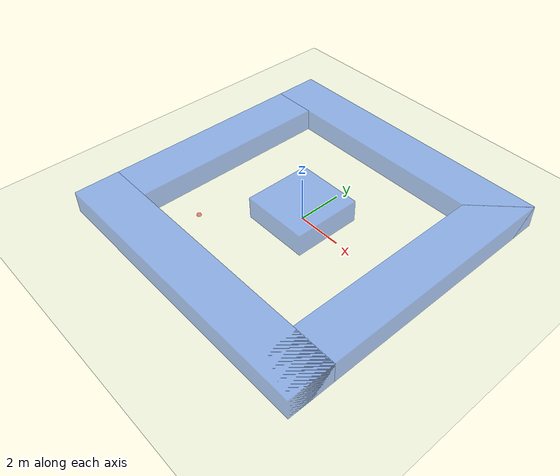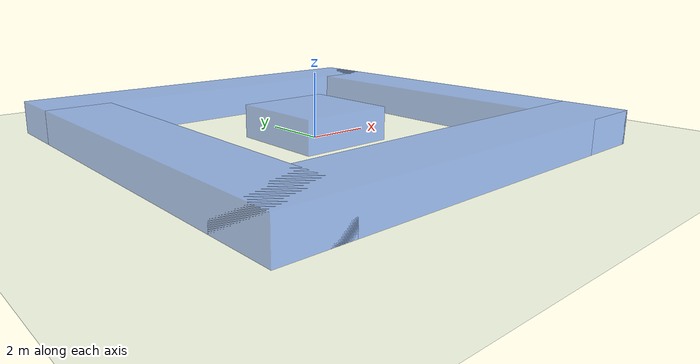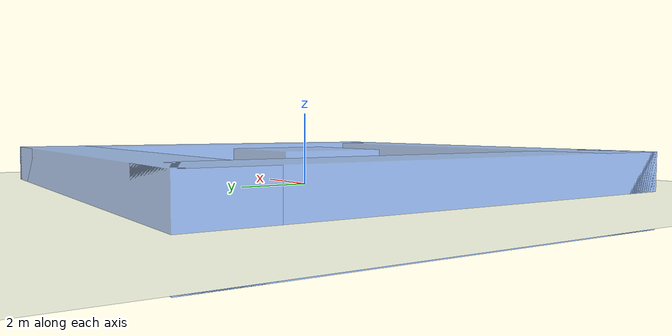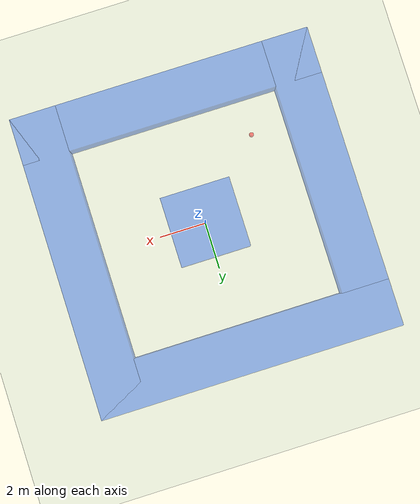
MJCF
<?xml version="1.0" encoding="utf-8"?>
<mujoco model="antmaze">
    <include file="config.xml"></include>
    <include file="assets.xml"></include>
    <worldbody>
        <light cutoff="100" diffuse="1 1 1" dir="-0 0 -1.3" directional="true" exponent="1" pos="0 0 1.3" specular=".1 .1 .1"/>
        <geom conaffinity="1" condim="3" material="MatPlane" name="floor" pos="0 0 0" rgba="0.8 0.9 0.8 1" size="50 50 50" type="plane"/>
        <include file="ant.xml"></include>
        <include file="maze_walls.xml"></include>

        <!--By default, this goal will be hidden under the floor-->
        <site name="goal" rgba="0 1 1 0.5" pos="0. 0. -1" size="0.5" />
        <site name="origin" rgba="0 0 1 0.5" pos="0. 0. 0." size="0.1" />
        <site name="start" rgba="1 0 0 0.5" pos="-3 -3 0." size="0.1" />
    </worldbody>
    <actuator>
        <motor ctrllimited="true" ctrlrange="-1.0 1.0" joint="hip_4" gear="30"/>
        <motor ctrllimited="true" ctrlrange="-1.0 1.0" joint="ankle_4" gear="30"/>
        <motor ctrllimited="true" ctrlrange="-1.0 1.0" joint="hip_1" gear="30"/>
        <motor ctrllimited="true" ctrlrange="-1.0 1.0" joint="ankle_1" gear="30"/>
        <motor ctrllimited="true" ctrlrange="-1.0 1.0" joint="hip_2" gear="30"/>
        <motor ctrllimited="true" ctrlrange="-1.0 1.0" joint="ankle_2" gear="30"/>
        <motor ctrllimited="true" ctrlrange="-1.0 1.0" joint="hip_3" gear="30"/>
        <motor ctrllimited="true" ctrlrange="-1.0 1.0" joint="ankle_3" gear="30"/>
    </actuator>
</mujoco>

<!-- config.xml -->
<mujoco>
    <compiler angle="degree" coordinate="local" inertiafromgeom="true"/>
    <option integrator="RK4" timestep="0.01"/>
    <default>
        <joint armature="1" damping="1" limited="true"/>
        <geom conaffinity="0" condim="3" density="5.0" friction="1 0.5 0.5" margin="0.01" rgba="0.8 0.6 0.4 1"/>
    </default>
</mujoco>

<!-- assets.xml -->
<mujoco>
    <asset>
        <texture builtin="gradient" height="100" rgb1="1 1 1" rgb2="0 0 0" type="skybox" width="100"/>
        <texture builtin="flat" height="1278" mark="cross" markrgb="1 1 1" name="texgeom" random="0.01" rgb1="0.8 0.6 0.4" rgb2="0.8 0.6 0.4" type="cube" width="127"/>
        <texture builtin="checker" height="100" width="100" name="texplane" rgb1="0.5 0.5 0.5" rgb2="0.8 0.8 0.8" type="2d"/>

        <material name="MatPlane" reflectance="0.5" shininess="1" specular="1" texrepeat="60 60" texture="texplane"/>
        <material name="geom" texture="texgeom" texuniform="true"/>

        <texture name="wood" file="../texture/wood.png" type="cube"/>
        <material shininess=".1" name="wood" texture="wood" specular="0.4"/>
        <texture name="medium_wood" file="../texture/medium_wood.png" type="cube"/>
        <material shininess=".1" name="medium_wood" texture="medium_wood" specular="0.4"/>
        <texture name="light_wood" file="../texture/light_wood.png" type="cube"/>
        <material shininess=".1" name="light_wood" texture="light_wood" specular="0.4"/>
        <texture name="darkwood" file="../texture/darkwood.png" type="cube"/>
        <material shininess=".1" name="darkwood" texture="darkwood" specular="0.4"/>
        <texture name="granite" file="../texture/granite.png" type="cube"/>
        <material shininess=".1" name="granite" texture="granite" specular="0.4"/>
    </asset>
</mujoco>

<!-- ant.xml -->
<!-- Same a gym ant but with sites -->
<mujoco model="ant">
<compiler angle="degree" coordinate="local" inertiafromgeom="true"/>
<option integrator="RK4" timestep="0.01"/>
<custom>
  <numeric data="0.0 0.0 0.55 1.0 0.0 0.0 0.0 0.0 1.0 0.0 -1.0 0.0 -1.0 0.0 1.0" name="init_qpos"/>
</custom>
<default>
  <joint armature="1" damping="1" limited="true"/>
  <geom conaffinity="0" condim="3" density="5.0" friction="1 0.5 0.5" margin="0.01" rgba="0.8 0.6 0.4 1"/>
</default>
<asset>
  <texture builtin="gradient" height="100" rgb1="1 1 1" rgb2="0 0 0" type="skybox" width="100"/>
  <texture builtin="flat" height="1278" mark="cross" markrgb="1 1 1" name="texgeom" random="0.01" rgb1="0.8 0.6 0.4" rgb2="0.8 0.6 0.4" type="cube" width="127"/>
  <texture builtin="checker" height="100" name="texplane" rgb1="0 0 0" rgb2="0.8 0.8 0.8" type="2d" width="100"/>
  <material name="MatPlane" reflectance="0.5" shininess="1" specular="1" texrepeat="60 60" texture="texplane"/>
  <material name="geom" texture="texgeom" texuniform="true"/>
</asset>
<worldbody>
  <light cutoff="100" diffuse="1 1 1" dir="-0 0 -1.3" directional="true" exponent="1" pos="0 0 1.3" specular=".1 .1 .1"/>
  <geom conaffinity="1" condim="3" material="MatPlane" name="floor" pos="0 0 0" rgba="0.8 0.9 0.8 1" size="40 40 40" type="plane"/>
  <body name="torso" pos="0 0 0.75">
    <geom name="torso_geom" pos="0 0 0" size="0.25" type="sphere"/>
    <joint armature="0" damping="0" limited="false" margin="0.01" name="root" pos="0 0 0" type="free"/>
    <body name="front_left_leg" pos="0 0 0">
      <geom fromto="0.0 0.0 0.0 0.2 0.2 0.0" name="aux_1_geom" size="0.08" type="capsule"/>
      <body name="aux_1" pos="0.2 0.2 0">
        <joint axis="0 0 1" name="hip_1" pos="0.0 0.0 0.0" range="-30 30" type="hinge"/>
        <geom fromto="0.0 0.0 0.0 0.2 0.2 0.0" name="left_leg_geom" size="0.08" type="capsule"/>
        <body pos="0.2 0.2 0">
          <joint axis="-1 1 0" name="ankle_1" pos="0.0 0.0 0.0" range="30 70" type="hinge"/>
          <geom fromto="0.0 0.0 0.0 0.4 0.4 0.0" name="left_ankle_geom" size="0.08" type="capsule"/>
        </body>
      </body>
    </body>
    <body name="front_right_leg" pos="0 0 0">
      <geom fromto="0.0 0.0 0.0 -0.2 0.2 0.0" name="aux_2_geom" size="0.08" type="capsule"/>
      <body name="aux_2" pos="-0.2 0.2 0">
        <joint axis="0 0 1" name="hip_2" pos="0.0 0.0 0.0" range="-30 30" type="hinge"/>
        <geom fromto="0.0 0.0 0.0 -0.2 0.2 0.0" name="right_leg_geom" size="0.08" type="capsule"/>
        <body pos="-0.2 0.2 0">
          <joint axis="1 1 0" name="ankle_2" pos="0.0 0.0 0.0" range="-70 -30" type="hinge"/>
          <geom fromto="0.0 0.0 0.0 -0.4 0.4 0.0" name="right_ankle_geom" size="0.08" type="capsule"/>
        </body>
      </body>
    </body>
    <body name="back_leg" pos="0 0 0">
      <geom fromto="0.0 0.0 0.0 -0.2 -0.2 0.0" name="aux_3_geom" size="0.08" type="capsule"/>
      <body name="aux_3" pos="-0.2 -0.2 0">
        <joint axis="0 0 1" name="hip_3" pos="0.0 0.0 0.0" range="-30 30" type="hinge"/>
        <geom fromto="0.0 0.0 0.0 -0.2 -0.2 0.0" name="back_leg_geom" size="0.08" type="capsule"/>
        <body pos="-0.2 -0.2 0">
          <joint axis="-1 1 0" name="ankle_3" pos="0.0 0.0 0.0" range="-70 -30" type="hinge"/>
          <geom fromto="0.0 0.0 0.0 -0.4 -0.4 0.0" name="third_ankle_geom" size="0.08" type="capsule"/>
        </body>
      </body>
    </body>
    <body name="right_back_leg" pos="0 0 0">
      <geom fromto="0.0 0.0 0.0 0.2 -0.2 0.0" name="aux_4_geom" size="0.08" type="capsule"/>
      <body name="aux_4" pos="0.2 -0.2 0">
        <joint axis="0 0 1" name="hip_4" pos="0.0 0.0 0.0" range="-30 30" type="hinge"/>
        <geom fromto="0.0 0.0 0.0 0.2 -0.2 0.0" name="rightback_leg_geom" size="0.08" type="capsule"/>
        <body pos="0.2 -0.2 0">
          <joint axis="1 1 0" name="ankle_4" pos="0.0 0.0 0.0" range="30 70" type="hinge"/>
          <geom fromto="0.0 0.0 0.0 0.4 -0.4 0.0" name="fourth_ankle_geom" size="0.08" type="capsule"/>
        </body>
      </body>
    </body>
  </body>
  <!--By default, this goal will be hidden under the floor-->
  <site name="goal" rgba="0 1 1 0.5" pos="0. 0. -1" size="0.5" />
  <site name="origin" rgba="1 0 0 0.5" pos="0. 0. 0." size="0.1" />
</worldbody>
<actuator>
  <motor ctrllimited="true" ctrlrange="-1.0 1.0" joint="hip_4" gear="120"/>
  <motor ctrllimited="true" ctrlrange="-1.0 1.0" joint="ankle_4" gear="120"/>
  <motor ctrllimited="true" ctrlrange="-1.0 1.0" joint="hip_1" gear="120"/>
  <motor ctrllimited="true" ctrlrange="-1.0 1.0" joint="ankle_1" gear="120"/>
  <motor ctrllimited="true" ctrlrange="-1.0 1.0" joint="hip_2" gear="120"/>
  <motor ctrllimited="true" ctrlrange="-1.0 1.0" joint="ankle_2" gear="120"/>
  <motor ctrllimited="true" ctrlrange="-1.0 1.0" joint="hip_3" gear="120"/>
  <motor ctrllimited="true" ctrlrange="-1.0 1.0" joint="ankle_3" gear="120"/>
</actuator>
</mujoco>

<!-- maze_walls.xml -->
<mujoco>
    <body name="walls" pos="0 0 0">
        <!-- size = walls pos / 2-->
        <body name="innerwall" pos="0 0 0">
            <geom type="box" pos="0 0 0" size="1.5 1.5 1"
                  rgba=".12 .4 .9 0.5"
                  contype="3" conaffinity="3" />
        </body>
        <body name="outerwall" pos="0 0 0">
            <!-- pos = 1 + 3*(inner wall size) -->
            <!-- size = 3*(inner wall size) -->
            <geom type="box" pos="0 5.5 0" size="6.5 1 1"
                  rgba=".12 .4 .9 0.5"
                  contype="2" conaffinity="3" />
            <geom type="box" pos="0 -5.5 0" size="6.5 1 1"
                  rgba=".12 .4 .9 0.5"
                  contype="2" conaffinity="3" />
            <!-- pos = 1 + 3*(inner wall size) -->
            <!-- size = 2 + 3*(inner wall size) -->
            <geom type="box" pos="5.5 0 0" size="1 6.5 1"
                  rgba=".12 .4 .9 0.5"
                  contype="2" conaffinity="3" />
            <geom type="box" pos="-5.5 0 0" size="1 6.5 1"
                  rgba=".12 .4 .9 0.5"
                  contype="2" conaffinity="3" />
        </body>
    </body>
        <!--rgba=".12 .4 .9 1"-->
        <!--rgba=".12 .4 .9 1"-->
        <!--rgba=".12 .4 .9 1"-->
        <!--rgba=".12 .4 .9 1"-->
        <!--rgba=".12 .4 .9 1"-->
</mujoco>
